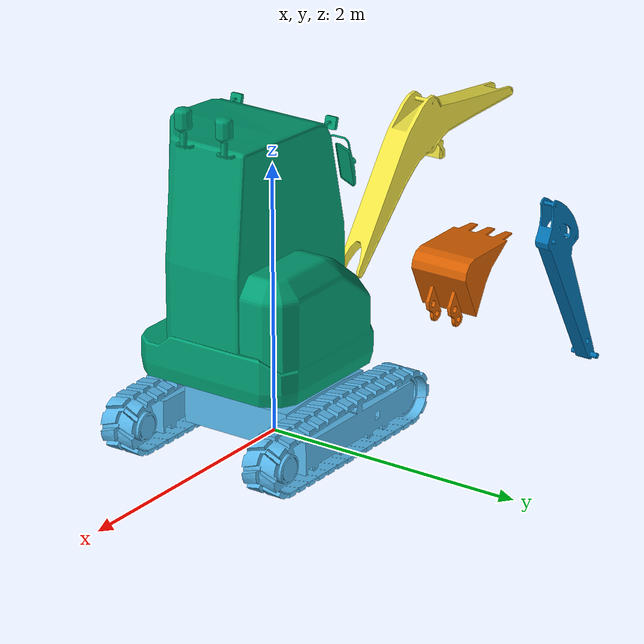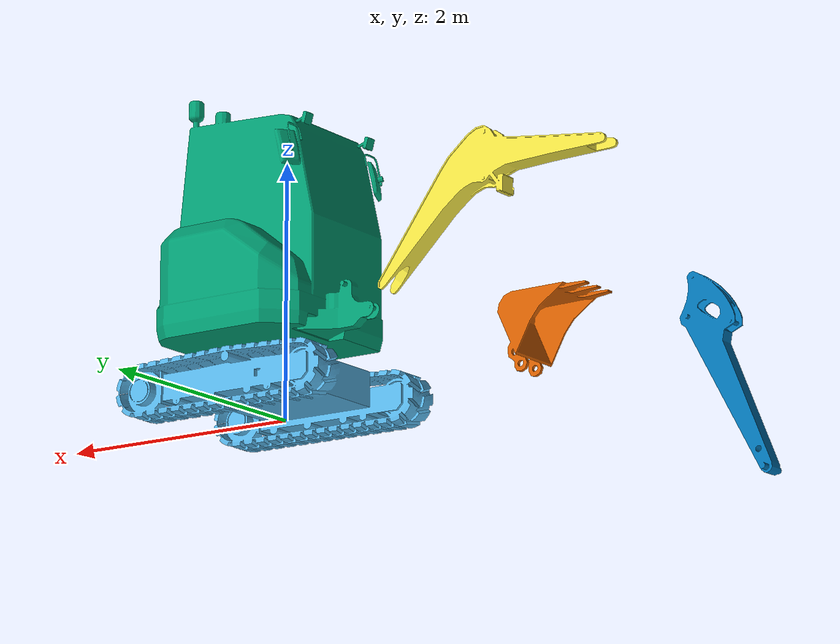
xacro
<?xml version="1.0"?>
<robot name="excavator" xmlns:xacro="http://www.ros.org/wiki/xacro">

  <!-- When true: mock_components/GenericSystem for RViz-only MoveIt (no Gazebo). -->
  <xacro:arg name="use_mock_hardware" default="false"/>

  <xacro:property name="mesh_uri" value="package://excavator_description/meshes"/>

  <!-- Massless root -->
  <link name="base_link"/>

  <!-- BASE (heavier + realistic inertia) -->
  <link name="base">
    <inertial>
      <mass value="300.0"/>
      <origin xyz="0 0 0"/>
      <inertia ixx="80" iyy="80" izz="120" ixy="0" ixz="0" iyz="0"/>
    </inertial>
    <visual>
      <geometry>
        <mesh filename="package://excavator_description/meshes/base.dae"/>
      </geometry>
      <origin xyz="0 0 0" />
    </visual>
    <collision>
      <geometry>
        <mesh filename="package://excavator_description/meshes/base.dae"/>
      </geometry>
    </collision>
  </link>

  <!-- BODY / TURRET -->
  <link name="body">
    <inertial>
      <mass value="350.0"/>
      <origin xyz="0 0 0"/>
      <inertia ixx="60" iyy="60" izz="70" ixy="0" ixz="0" iyz="0"/>
    </inertial>
    <visual>
      <geometry>
        <mesh filename="package://excavator_description/meshes/body.dae"/>
      </geometry>
      <origin xyz="0 0 0" />
    </visual>
    <collision>
      <geometry>
        <mesh filename="package://excavator_description/meshes/body.dae"/>
      </geometry>
    </collision>
  </link>

  <!-- ARM1 (boom) -->
  <link name="boom">
    <inertial>
      <mass value="120.0"/>
      <origin xyz="0 0 0"/>
      <inertia ixx="12" iyy="24" izz="22" ixy="0" ixz="0" iyz="0"/>
    </inertial>
    <visual>
      <geometry>
        <mesh filename="package://excavator_description/meshes/boom.dae"/>
      </geometry>
      <origin xyz="0 0 0" />
    </visual>
    <collision>
      <geometry>
        <mesh filename="package://excavator_description/meshes/boom.dae"/>
      </geometry>
    </collision>
  </link>

  <!-- ARM2 (stick) -->
  <link name="stick">
    <inertial>
      <mass value="80.0"/>
      <origin xyz="0 0 0"/>
      <inertia ixx="8" iyy="16" izz="14" ixy="0" ixz="0" iyz="0"/>
    </inertial>
    <visual>
      <geometry>
        <mesh filename="package://excavator_description/meshes/stick.dae"/>
      </geometry>
      <origin xyz="0 0 0" />
    </visual>
    <collision>
      <geometry>
        <mesh filename="package://excavator_description/meshes/stick.dae"/>
      </geometry>
    </collision>
  </link>

  <!-- SHOVEL (bucket) -->
  <link name="bucket">
    <inertial>
      <mass value="60.0"/>
      <origin xyz="0 0 0"/>
      <inertia ixx="4" iyy="6" izz="6" ixy="0" ixz="0" iyz="0"/>
    </inertial>
    <visual>
      <geometry>
        <mesh filename="package://excavator_description/meshes/bucket.dae"/>
      </geometry>
      <origin xyz="0 0 0" rpy="0 3.14159 0"/>
    </visual>
    <collision>
      <geometry>
        <mesh filename="package://excavator_description/meshes/bucket.dae"/>
      </geometry>
    </collision>
  </link>

  <!-- Sensor links (IMU and 3D LiDAR on body/cab) - visible physical sensor geometry -->
  <link name="sensor_imu_link">
    <inertial>
      <mass value="0.02"/>
      <origin xyz="0 0 0"/>
      <inertia ixx="1e-5" iyy="1e-5" izz="1e-5" ixy="0" ixz="0" iyz="0"/>
    </inertial>
    <visual name="imu_visual">
      <geometry><box size="0.12 0.10 0.03"/></geometry>
      <origin xyz="0 0 0"/>
      <material name="imu_material">
        <color rgba="0.9 0.45 0.1 1"/>
      </material>
    </visual>
    <collision name="imu_collision">
      <geometry><box size="0.12 0.10 0.03"/></geometry>
      <origin xyz="0 0 0"/>
    </collision>
  </link>
  <link name="sensor_lidar_link">
    <inertial>
      <mass value="0.05"/>
      <origin xyz="0 0 0"/>
      <inertia ixx="1e-4" iyy="1e-4" izz="1e-4" ixy="0" ixz="0" iyz="0"/>
    </inertial>
    <visual name="lidar_base">
      <geometry><cylinder radius="0.08" length="0.04"/></geometry>
      <origin xyz="0 0 0" rpy="0 0 3.14159"/>
      <material name="lidar_base_material">
        <color rgba="0.1 0.5 0.85 1"/>
      </material>
    </visual>
    <visual name="lidar_dome">
      <geometry><sphere radius="0.07"/></geometry>
      <origin xyz="0 0 0.05" rpy="0 0 0"/>
      <material name="lidar_dome_material">
        <color rgba="0.2 0.6 0.9 0.95"/>
      </material>
    </visual>
    <collision name="lidar_collision">
      <geometry><cylinder radius="0.08" length="0.12"/></geometry>
      <origin xyz="0 0 0.04" rpy="0 0 0"/>
    </collision>
  </link>

  <!-- Fixed joint between base_link (root) and base -->
  <joint name="base_to_base_link" type="fixed">
    <parent link="base_link"/>
    <child link="base"/>
    <origin xyz="0 0 0" rpy="0 0 3.14159"/>
  </joint>

  <!-- Joints with damping/friction and stronger limits -->
  <joint name="body_rotation" type="revolute">
    <parent link="base"/>
    <child link="body"/>
    <axis xyz="0 0 1"/>
    <origin xyz="0.0 0.0 0.6"/>
    <dynamics damping="8.0" friction="0.5"/>
    <limit effort="4000.0" lower="-12.566370614359172" upper="12.566370614359172" velocity="1.5"/>
  </joint>

  <joint name="boom_rotation" type="revolute">
    <parent link="body"/>
    <child link="boom"/>
    <axis xyz="0 1 0"/>
    <origin xyz="0.933 0.0 0.302"/>
    <dynamics damping="10.0" friction="1.5"/>
    <limit effort="4000.0" lower="-1.40" upper="0.20" velocity="1.0"/>
  </joint>

  <joint name="stick_rotation" type="revolute">
    <parent link="boom"/>
    <child link="stick"/>
    <axis xyz="0 1 0"/>
    <origin xyz="2.586 0 -0.625"/>
    <dynamics damping="8.0" friction="1.2"/>
    <limit effort="3500.0" lower="-2.428" upper="0.20" velocity="1.0"/>
  </joint>

  <joint name="bucket_rotation" type="revolute">
    <parent link="stick"/>
    <child link="bucket"/>
    <axis xyz="0 1 0"/>
    <origin xyz="-1.362 0 -0.154"/>
    <dynamics damping="6.0" friction="0.8"/>
    <!-- Upper relaxed toward 0: gz/joint_states often ~-0.01 rad; tight upper=-0.357 made CheckStartStateBounds fail. -->
    <limit effort="3000.0" lower="-2.00" upper="2.00" velocity="1.2"/>
  </joint>

  <!-- Body -> sensor links (fixed, above cab) -->
  <joint name="body_to_imu" type="fixed">
    <parent link="body"/>
    <child link="sensor_imu_link"/>
    <origin xyz="0.3 0 0.25" rpy="0 0 0"/>
  </joint>
  <joint name="body_to_lidar" type="fixed">
    <parent link="body"/>
    <child link="sensor_lidar_link"/>
    <origin xyz="0.35 0 0.4" rpy="0 0 0"/>
  </joint>

  <!-- Mock hardware defaults all states to 0; arm joints must be negative per URDF limits. -->
  <xacro:macro name="excavator_mock_ros2_control_joints">
    <joint name="body_rotation">
      <command_interface name="position"/>
      <state_interface name="position">
        <param name="initial_value">0.0</param>
      </state_interface>
      <state_interface name="velocity"/>
    </joint>
    <joint name="boom_rotation">
      <command_interface name="position"/>
      <state_interface name="position">
        <param name="initial_value">-0.70</param>
      </state_interface>
      <state_interface name="velocity"/>
    </joint>
    <joint name="stick_rotation">
      <command_interface name="position"/>
      <state_interface name="position">
        <param name="initial_value">-1.26</param>
      </state_interface>
      <state_interface name="velocity"/>
    </joint>
    <joint name="bucket_rotation">
      <command_interface name="position"/>
      <state_interface name="position">
        <param name="initial_value">-1.12</param>
      </state_interface>
      <state_interface name="velocity"/>
    </joint>
  </xacro:macro>

  <xacro:macro name="excavator_ros2_control_joints">
    <joint name="body_rotation">
      <command_interface name="position"/>
      <state_interface name="position">
        <param name="initial_value">0.0</param>
      </state_interface>
      <state_interface name="velocity"/>
    </joint>
    <joint name="boom_rotation">
      <command_interface name="position"/>
      <state_interface name="position">
        <param name="initial_value">-0.70</param>
      </state_interface>
      <state_interface name="velocity"/>
    </joint>
    <joint name="stick_rotation">
      <command_interface name="position"/>
      <state_interface name="position">
        <param name="initial_value">-1.26</param>
      </state_interface>
      <state_interface name="velocity"/>
    </joint>
    <joint name="bucket_rotation">
      <command_interface name="position"/>
      <state_interface name="position">
        <param name="initial_value">-1.12</param>
      </state_interface>
      <state_interface name="velocity"/>
    </joint>
  </xacro:macro>

  <!-- ros2_control: Gazebo sim hardware (default) or mock hardware (RViz-only demo). -->
  <xacro:unless value="$(arg use_mock_hardware)">
    <ros2_control name="GazeboSimSystem" type="system">
      <hardware>
        <plugin>gz_ros2_control/GazeboSimSystem</plugin>
      </hardware>
      <xacro:excavator_ros2_control_joints/>
    </ros2_control>
    <gazebo>
      <plugin filename="libgz_ros2_control-system.so"
              name="gz_ros2_control::GazeboSimROS2ControlPlugin">
        <parameters>$(find excavator_description)/config/controllers.yaml</parameters>
      </plugin>
    </gazebo>
  </xacro:unless>

  <xacro:if value="$(arg use_mock_hardware)">
    <ros2_control name="MockHardwareSystem" type="system">
      <hardware>
        <plugin>mock_components/GenericSystem</plugin>
        <param name="mock_sensor_commands">false</param>
        <param name="position_state_following_offset">0.0</param>
      </hardware>
      <xacro:excavator_mock_ros2_control_joints/>
    </ros2_control>
  </xacro:if>

  <!-- IMU sensor (Gazebo Harmonic); orange so visible in sim -->
  <gazebo reference="sensor_imu_link">
    <material>Gazebo/Orange</material>
    <sensor name="imu_sensor" type="imu">
      <always_on>true</always_on>
      <update_rate>100</update_rate>
      <visualize>true</visualize>
      <topic>/excavator/imu</topic>
      <imu>
        <angular_velocity>
          <x><noise type="gaussian"><mean>0.0</mean><stddev>0.0002</stddev></noise></x>
          <y><noise type="gaussian"><mean>0.0</mean><stddev>0.0002</stddev></noise></y>
          <z><noise type="gaussian"><mean>0.0</mean><stddev>0.0002</stddev></noise></z>
        </angular_velocity>
        <linear_acceleration>
          <x><noise type="gaussian"><mean>0.0</mean><stddev>0.017</stddev></noise></x>
          <y><noise type="gaussian"><mean>0.0</mean><stddev>0.017</stddev></noise></y>
          <z><noise type="gaussian"><mean>0.0</mean><stddev>0.017</stddev></noise></z>
        </linear_acceleration>
      </imu>
    </sensor>
  </gazebo>

  <!-- 3D LiDAR sensor (gpu_lidar, Gazebo Harmonic); blue so visible in sim -->
  <gazebo reference="sensor_lidar_link">
    <material>Gazebo/Blue</material>
    <sensor name="lidar_sensor" type="gpu_lidar">
      <always_on>true</always_on>
      <update_rate>10</update_rate>
      <visualize>true</visualize>
      <topic>/excavator/points</topic>
      <lidar>
        <scan>
          <horizontal>
            <samples>360</samples>
            <resolution>1.0</resolution>
            <min_angle>-3.14159265</min_angle>
            <max_angle>3.14159265</max_angle>
          </horizontal>
          <vertical>
            <samples>32</samples>
            <resolution>1.0</resolution>
            <min_angle>-0.261799</min_angle>
            <max_angle>0.261799</max_angle>
          </vertical>
        </scan>
        <range>
          <min>0.2</min>
          <max>30.0</max>
          <resolution>0.01</resolution>
        </range>
      </lidar>
    </sensor>
  </gazebo>

</robot>
